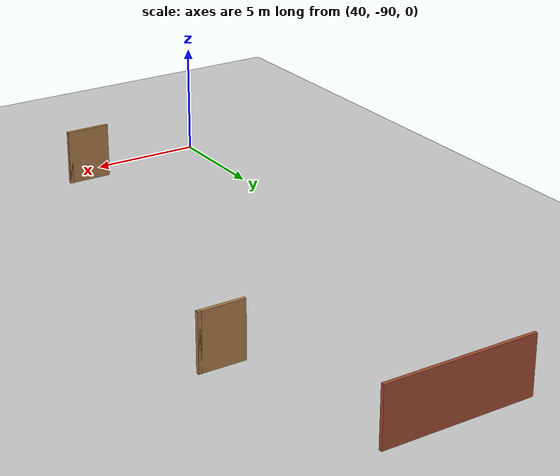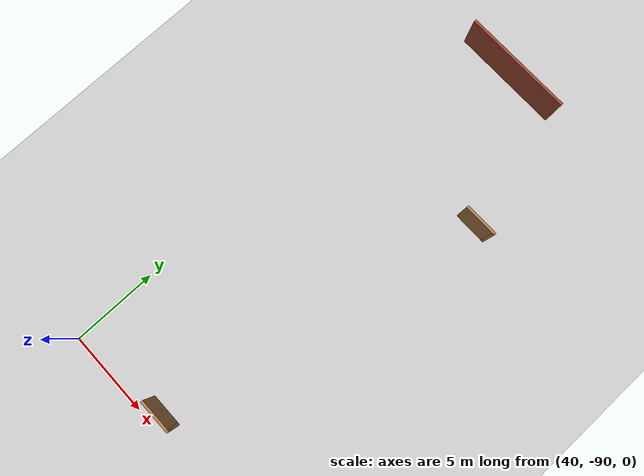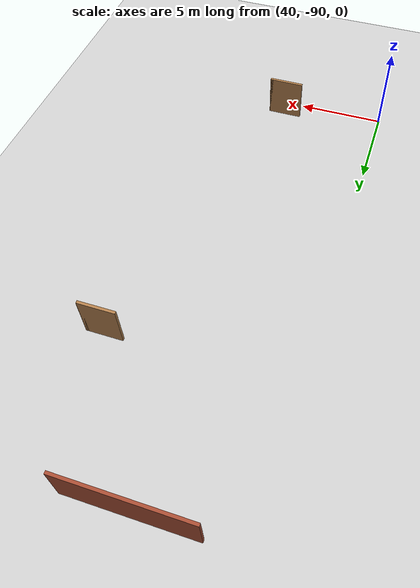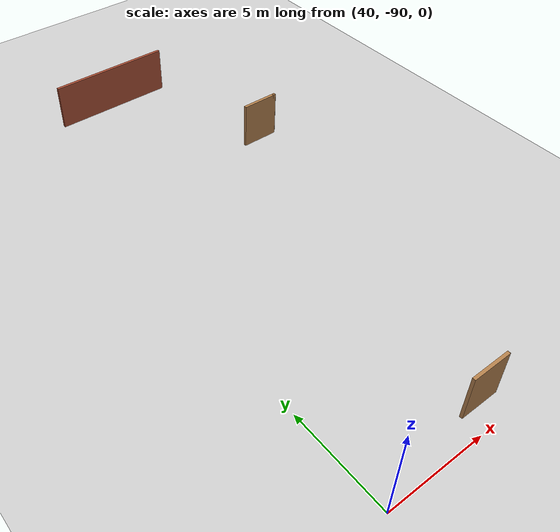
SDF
<sdf version="1.6">
 <world name="default">
  <model name="map_palace_v2_model_1_0">
   <pose>-3.1e-05 -55 0 0 -0 3.14</pose>
   <link name="Wall_88">
    <collision name="Wall_88_Collision">
     <geometry><box><size>6.50992 0.15 2.5</size></box></geometry>
     <pose>0 0 1.25 0 -0 0</pose>
    </collision>
    <visual name="Wall_88_Visual">
     <pose>0 0 1.25 0 -0 0</pose>
     <geometry><box><size>6.50992 0.15 2.5</size></box></geometry>
     <material>
      <script><uri>file://media/materials/scripts/gazebo.material</uri><name>Gazebo/Bricks</name></script>
      <ambient>1 1 1 1</ambient>
     </material>
     <meta><layer>0</layer></meta>
    </visual>
    <pose>-45.2394 7.75724 0 0 -0 -3.13852</pose>
   </link>
   <static>1</static>
  </model>
  <model name="wall_7">
   <pose>46 -89 0 0 -0 0</pose>
   <link name="Wall_2">
    <collision name="Wall_2_Collision">
     <geometry><box><size>2 0.15 2.5</size></box></geometry>
     <pose>0 0 1.25 0 -0 0</pose>
    </collision>
    <visual name="Wall_2_Visual">
     <pose>0 0 1.25 0 -0 0</pose>
     <geometry><box><size>2 0.15 2.5</size></box></geometry>
     <material>
      <script><uri>file://media/materials/scripts/gazebo.material</uri><name>Gazebo/Wood</name></script>
      <ambient>1 1 1 1</ambient>
     </material>
     <meta><layer>0</layer></meta>
    </visual>
    <pose>-0.005 -0 0 0 -0 0</pose>
   </link>
   <link name="Wall_3">
    <collision name="Wall_3_Collision">
     <geometry><box><size>0.16 0.15 2.5</size></box></geometry>
     <pose>0 0 1.25 0 -0 0</pose>
    </collision>
    <visual name="Wall_3_Visual">
     <pose>0 0 1.25 0 -0 0</pose>
     <geometry><box><size>0.16 0.15 2.5</size></box></geometry>
     <material>
      <script><uri>file://media/materials/scripts/gazebo.material</uri><name>Gazebo/Wood</name></script>
      <ambient>1 1 1 1</ambient>
     </material>
     <meta><layer>0</layer></meta>
    </visual>
    <pose>0.925 0 0 0 -0 0</pose>
   </link>
   <static>1</static>
  </model>
  <model name="wall_17">
   <pose>49.9634 -70.3714 0 0 -0 0</pose>
   <link name="Wall_2">
    <collision name="Wall_2_Collision">
     <geometry><box><size>2 0.15 2.5</size></box></geometry>
     <pose>0 0 1.25 0 -0 0</pose>
    </collision>
    <visual name="Wall_2_Visual">
     <pose>0 0 1.25 0 -0 0</pose>
     <geometry><box><size>2 0.15 2.5</size></box></geometry>
     <material>
      <script><uri>file://media/materials/scripts/gazebo.material</uri><name>Gazebo/Wood</name></script>
      <ambient>1 1 1 1</ambient>
     </material>
     <meta><layer>0</layer></meta>
    </visual>
    <pose>-0.005 -0 0 0 -0 0</pose>
   </link>
   <link name="Wall_3">
    <collision name="Wall_3_Collision">
     <geometry><box><size>0.16 0.15 2.5</size></box></geometry>
     <pose>0 0 1.25 0 -0 0</pose>
    </collision>
    <visual name="Wall_3_Visual">
     <pose>0 0 1.25 0 -0 0</pose>
     <geometry><box><size>0.16 0.15 2.5</size></box></geometry>
     <material>
      <script><uri>file://media/materials/scripts/gazebo.material</uri><name>Gazebo/Wood</name></script>
      <ambient>1 1 1 1</ambient>
     </material>
     <meta><layer>0</layer></meta>
    </visual>
    <pose>0.925 0 0 0 -0 0</pose>
   </link>
   <static>1</static>
  </model>
  <model name="ground_plane">
   <static>1</static>
   <link name="link">
    <collision name="collision">
     <geometry><plane><normal>0 0 1</normal><size>100 100</size></plane></geometry>
     <surface>
      <contact><collide_bitmask>65535</collide_bitmask></contact>
      <friction><ode><mu>100</mu><mu2>50</mu2></ode></friction>
     </surface>
    </collision>
    <visual name="visual">
     <cast_shadows>0</cast_shadows>
     <geometry><plane><normal>0 0 1</normal><size>100 100</size></plane></geometry>
     <material>
      <script><uri>file://media/materials/scripts/gazebo.material</uri><name>Gazebo/Grey</name></script>
     </material>
    </visual>
   </link>
   <pose>9.31394 52.073 0 0 -0 0</pose>
  </model>
 </world>
</sdf>
